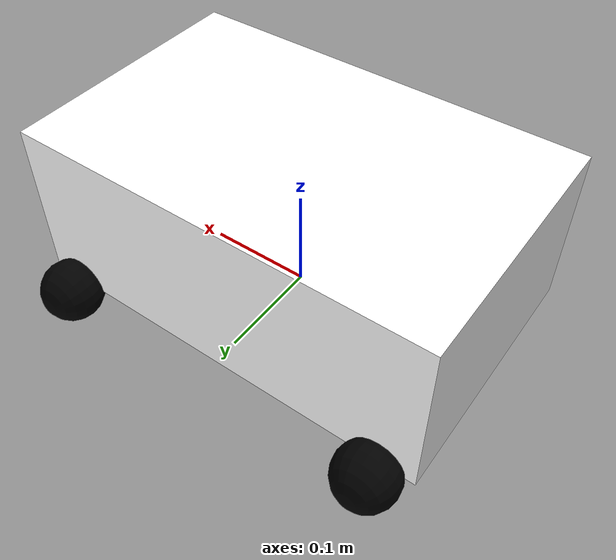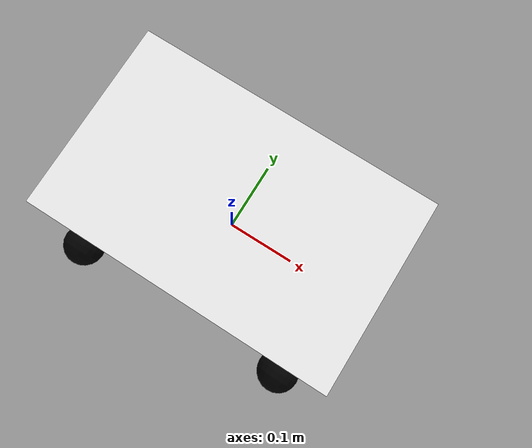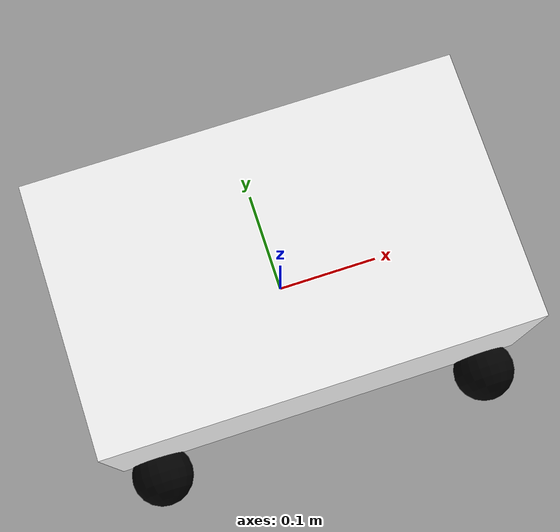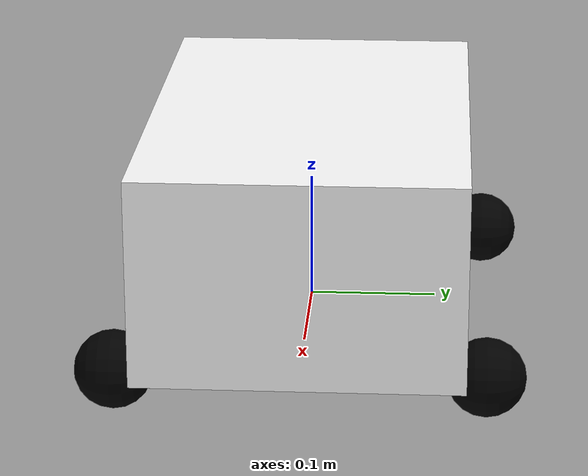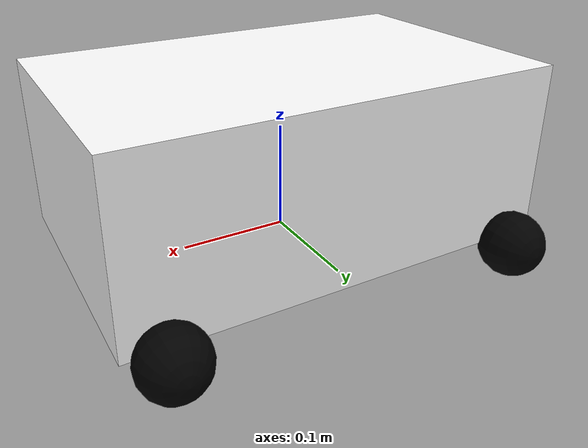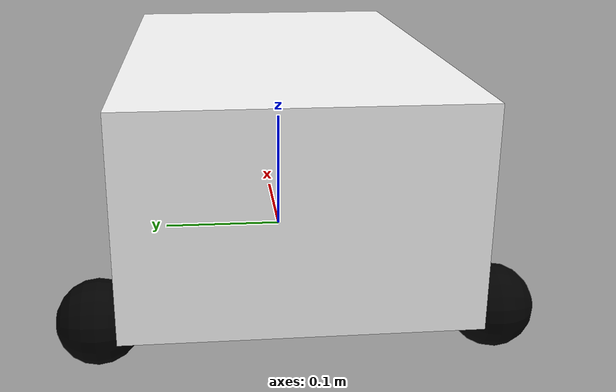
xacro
<?xml version="1.0"?>
<robot xmlns:xacro="http://www.ros.org/wiki/xacro">

    <xacro:include filename="inertial_macros.xacro"/>

    <xacro:property name="chassis_length" value="0.335"/>
    <xacro:property name="chassis_width" value="0.265"/>
    <xacro:property name="chassis_height" value="0.138"/>
    <xacro:property name="chassis_mass" value="1.0"/>
    <xacro:property name="wheel_radius" value="0.033"/>
    <xacro:property name="wheel_thickness" value="0.026"/>
    <xacro:property name="wheel_mass" value="0.05"/>
    <xacro:property name="wheel_offset_x" value="0.226"/>
    <xacro:property name="wheel_offset_y" value="0.1485"/>
    <xacro:property name="wheel_offset_z" value="0.01"/>
    <xacro:property name="caster_wheel_radius" value="0.01"/>
    <xacro:property name="caster_wheel_mass" value="0.01"/>
    <xacro:property name="caster_wheel_offset_x" value="0.075"/>
    <xacro:property name="caster_wheel_offset_z" value="${wheel_offset_z - wheel_radius + caster_wheel_radius}"/>

    <material name="white">
        <color rgba="1 1 1 1" />
    </material>

    <material name="orange">
        <color rgba="1 0.3 0.1 1" />
    </material>

    <material name="blue">
        <color rgba="0.2 0.2 1 1" />
    </material>

    <material name="black">
        <color rgba="0 0 0 1" />
    </material>

    <material name="red">
        <color rgba="1 0 0 1" />
    </material>

<!-- BASE LINK -->

    <link name="base_link">

    </link>

<!-- CHASSIS  LINK-->

    <joint name="chassis_joint" type="fixed">
        <parent link="base_link" />
        <child link="chassis"/>
        <origin xyz="0 0 0"/>
    </joint>

    <link name="chassis">
        <visual>
            <origin xyz="0 0 0.08"/>
            <geometry>
                <box size="0.4 0.25 0.16"/>
            </geometry>
            <material name="white"/>
        </visual>
        <collision>
            <origin xyz="0 0 0.08"/>
            <geometry>
                <box size="0.4 0.25 0.16"/>
            </geometry>
        </collision>
        <xacro:inertial_box mass="0.01" x="0.4" y="0.25" z="0.16">
            <origin xyz="0 0 0.08" rpy="0 0 0"/>
        </xacro:inertial_box>
    </link>

    <gazebo reference="chassis">
        <material>Gazebo/White</material>
    </gazebo>

<!-- LEFT FRONT WHEEL -->

<link name="wheel_front_left_link">
  <visual>
    <geometry>
      <sphere radius="0.03"/>
    </geometry>
    <origin xyz="0 0 0" rpy="0 0 0"/> <!-- agar menghadap ke samping -->
    <material name="black">
      <color rgba="0 0 0 1"/>
    </material>
  </visual>
  <collision>
    <geometry>
      <sphere radius="0.03"/>
      <origin xyz="0 0 0" rpy="0 0 0"/>
    </geometry>
    <friction>
      <ode>
        <mu>1000000</mu>
        <mu2>1000000</mu2>
        <slip1>0.01</slip1>
        <slip2>0.01</slip2>
      </ode>
    </friction>
  </collision>
  <xacro:inertial_cylinder mass="0.01" length="0.03" radius="0.03">
    <origin xyz="0 0 0" rpy="0 0 0"/>
  </xacro:inertial_cylinder>
</link>
<gazebo reference="wheel_front_left_link">
    <material>Gazebo/Blue</material>
</gazebo>
<joint name="base_to_wheel_front_left" type="continuous">
  <parent link="base_link"/>
  <child link="wheel_front_left_link"/>
  <origin xyz="0.165 0.14 0" rpy="${pi/2} 0 0"/>
  <axis xyz="0 0 -1"/>
</joint>

<!-- kanan-depan -->
<link name="wheel_front_right_link">
  <visual>
    <geometry>
      <sphere radius="0.03"/>
    </geometry>
    <origin xyz="0 0 0" rpy="0 0 0"/>
    <material name="black">
      <color rgba="0 0 0 1"/>
    </material>
  </visual>
  <collision>
    <geometry>
      <sphere radius="0.03"/>
      <origin xyz="0 0 0" rpy="0 0 0"/>
    </geometry>
    <friction>
      <ode>
        <mu>1000000</mu>
        <mu2>1000000</mu2>
        <slip1>0.01</slip1>
        <slip2>0.01</slip2>
      </ode>
    </friction>
  </collision>
  <xacro:inertial_cylinder mass="0.01" length="0.03" radius="0.03">
    <origin xyz="0 0 0" rpy="0 0 0"/>
  </xacro:inertial_cylinder>
</link>
<gazebo reference="wheel_front_right_link">
    <material>Gazebo/Blue</material>
</gazebo>
<joint name="base_to_wheel_front_right" type="continuous">
  <parent link="base_link"/>
  <child link="wheel_front_right_link"/>
  <origin xyz="0.165 -0.14 0" rpy="${pi/2} 0 0"/>
  <axis xyz="0 0 -1"/>
</joint>

<!-- kiri-belakang -->
<link name="wheel_back_left_link">
  <visual>
    <geometry>
      <sphere radius="0.03"/>
    </geometry>
    <origin xyz="0 0 0" rpy="0 0 0"/>
    <material name="black">
      <color rgba="0 0 0 1"/>
    </material>
  </visual>
  <collision>
    <geometry>
      <sphere radius="0.03"/>
      <origin xyz="0 0 0" rpy="0 0 0"/>
    </geometry>
    <friction>
      <ode>
        <mu>1000000</mu>
        <mu2>1000000</mu2>
        <slip1>0.01</slip1>
        <slip2>0.01</slip2>
      </ode>
    </friction>
  </collision>
  <xacro:inertial_cylinder mass="0.01" length="0.03" radius="0.03">
    <origin xyz="0 0 0" rpy="0 0 0"/>
  </xacro:inertial_cylinder>
</link>
<gazebo reference="wheel_back_left_link">
    <material>Gazebo/Blue</material>
</gazebo>
<joint name="base_to_wheel_back_left" type="continuous">
  <parent link="base_link"/>
  <child link="wheel_back_left_link"/>
  <origin xyz="-0.165 0.14 0" rpy="${pi/2} 0 0"/>
  <axis xyz="0 0 -1"/>
</joint>

<!-- kanan-belakang -->
<link name="wheel_back_right_link">
  <visual>
    <geometry>
    <sphere radius="0.03"/>
    </geometry>
    <origin xyz="0 0 0" rpy="0 0 0"/>
    <material name="black">
      <color rgba="0 0 0 1"/>
    </material>
  </visual>
  <collision>
    <geometry>
      <sphere radius="0.03"/>
      <origin xyz="0 0 0" rpy="0 0 0"/>
    </geometry>
    <friction>
      <ode>
        <mu>1000000</mu>
        <mu2>1000000</mu2>
        <slip1>0.01</slip1>
        <slip2>0.01</slip2>
      </ode>
    </friction>
  </collision>
  <xacro:inertial_cylinder mass="0.01" length="0.03" radius="0.03">
    <origin xyz="0 0 0" rpy="0 0 0"/>
  </xacro:inertial_cylinder>
</link>
<gazebo reference="wheel_back_right_link">
    <material>Gazebo/Blue</material>
</gazebo>
<joint name="base_to_wheel_back_right" type="continuous">
  <parent link="base_link"/>
  <child link="wheel_back_right_link"/>
  <origin xyz="-0.165 -0.14 0" rpy="${pi/2} 0 0"/>
  <axis xyz="0 0 -1"/>
</joint>

</robot>
